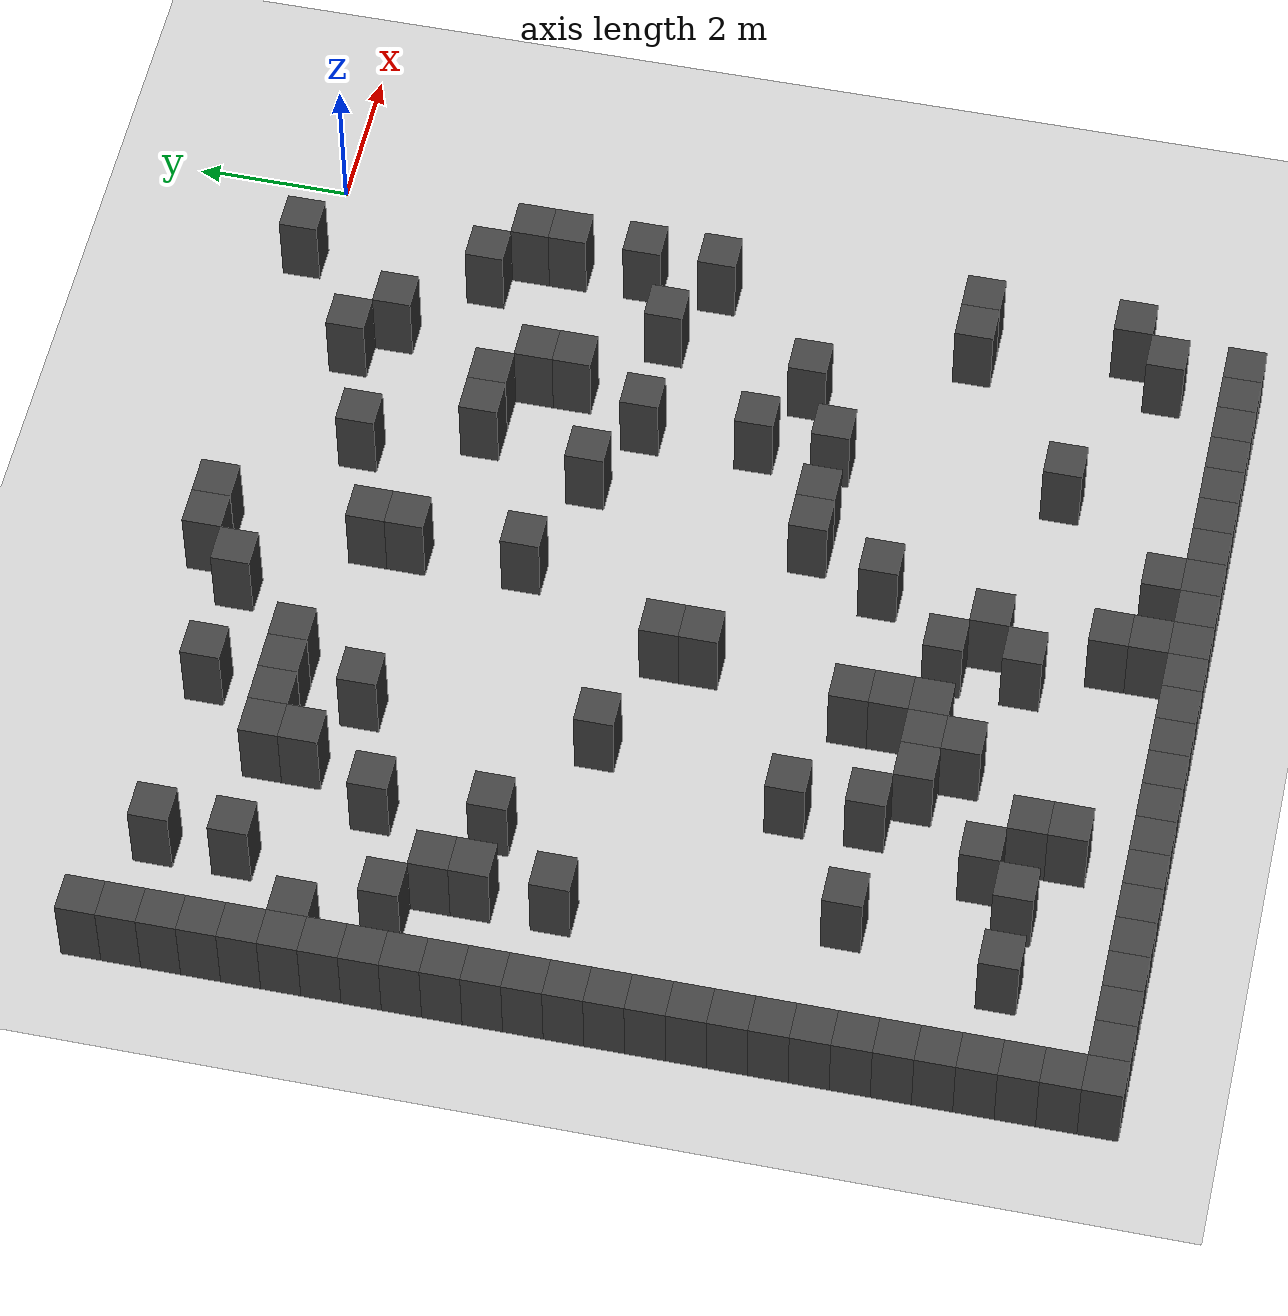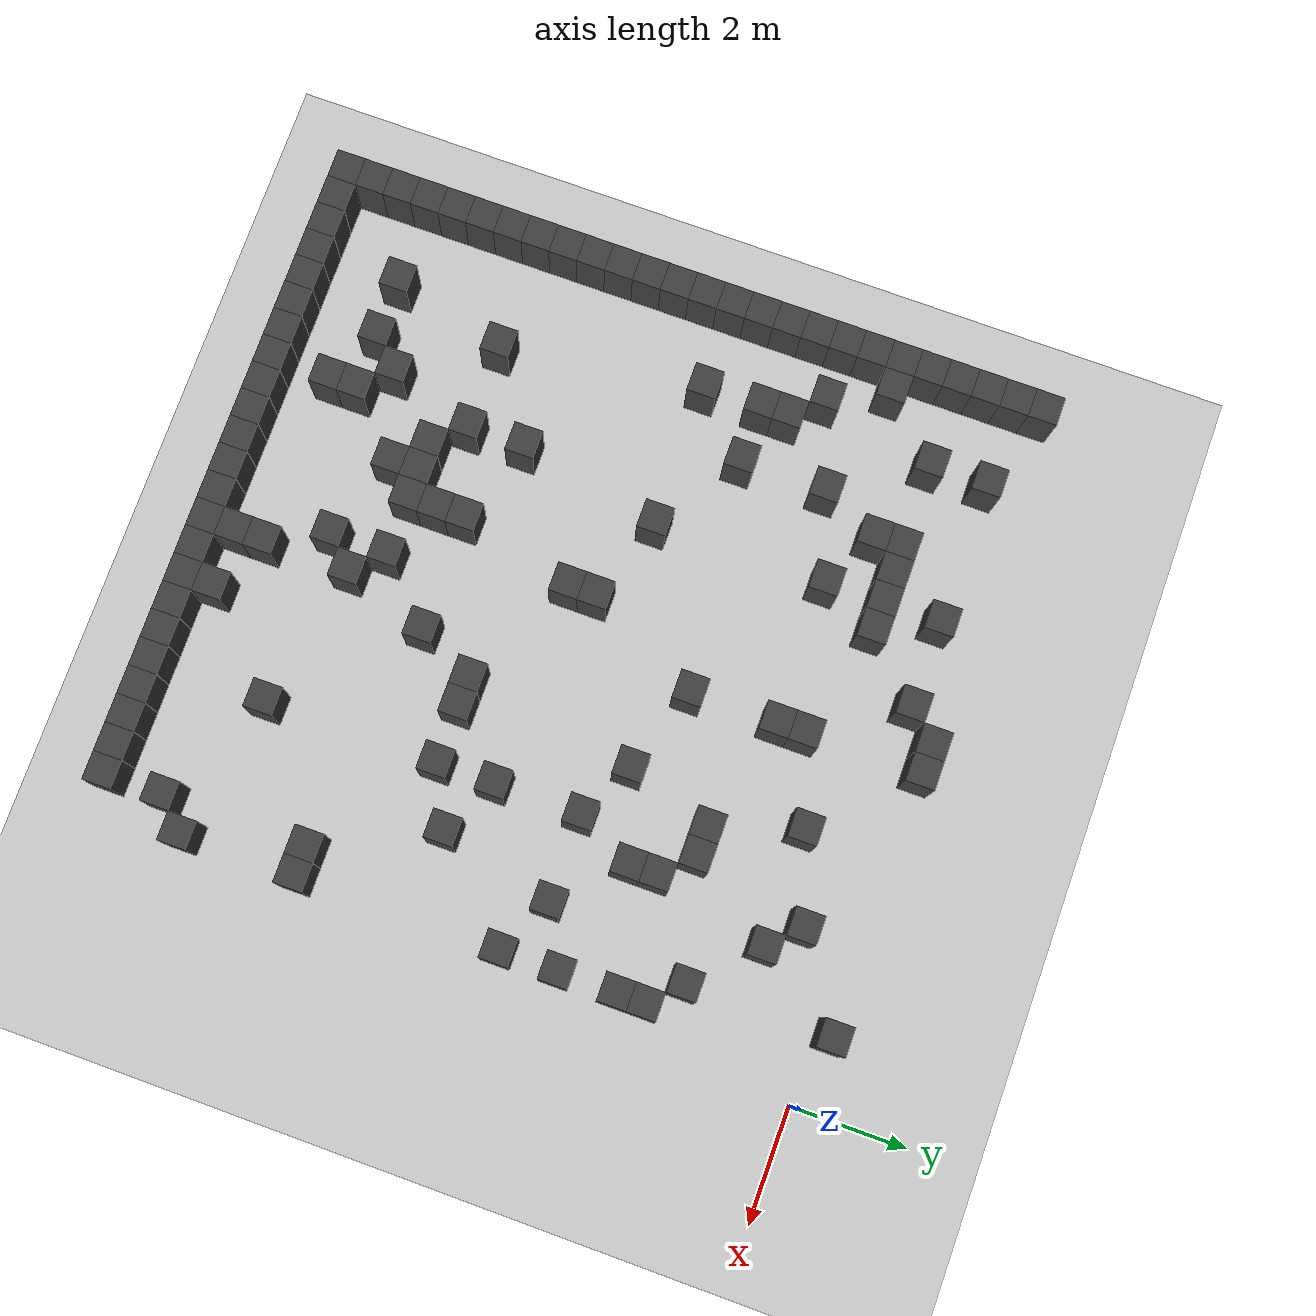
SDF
<sdf version="1.7">
 <world name="map_2375">
  <model name="ground_plane">
   <static>true</static>
   <link name="link">
    <collision name="collision">
     <geometry><plane><normal>0 0 1</normal><size>200 200</size></plane></geometry>
    </collision>
    <visual name="visual">
     <geometry><plane><normal>0 0 1</normal><size>200 200</size></plane></geometry>
     <material><ambient>0.8 0.8 0.8 1</ambient><diffuse>0.8 0.8 0.8 1</diffuse></material>
    </visual>
   </link>
  </model>
  <model name="maze_environment">
   <static>true</static>
   <link name="wall_235">
    <pose>-12.250 0.250 0.500 0 0 0</pose>
    <collision name="col"><geometry><box><size>0.5 0.5 1.0</size></box></geometry></collision>
    <visual name="vis">
     <geometry><box><size>0.5 0.5 1.0</size></box></geometry>
     <material><ambient>0.15 0.15 0.15 1</ambient><diffuse>0.25 0.25 0.25 1</diffuse></material>
    </visual>
   </link>
   <link name="wall_236">
    <pose>-6.250 0.250 0.500 0 0 0</pose>
    <collision name="col"><geometry><box><size>0.5 0.5 1.0</size></box></geometry></collision>
    <visual name="vis">
     <geometry><box><size>0.5 0.5 1.0</size></box></geometry>
     <material><ambient>0.15 0.15 0.15 1</ambient><diffuse>0.25 0.25 0.25 1</diffuse></material>
    </visual>
   </link>
   <link name="wall_237">
    <pose>-5.750 0.250 0.500 0 0 0</pose>
    <collision name="col"><geometry><box><size>0.5 0.5 1.0</size></box></geometry></collision>
    <visual name="vis">
     <geometry><box><size>0.5 0.5 1.0</size></box></geometry>
     <material><ambient>0.15 0.15 0.15 1</ambient><diffuse>0.25 0.25 0.25 1</diffuse></material>
    </visual>
   </link>
   <link name="wall_238">
    <pose>-1.250 0.250 0.500 0 0 0</pose>
    <collision name="col"><geometry><box><size>0.5 0.5 1.0</size></box></geometry></collision>
    <visual name="vis">
     <geometry><box><size>0.5 0.5 1.0</size></box></geometry>
     <material><ambient>0.15 0.15 0.15 1</ambient><diffuse>0.25 0.25 0.25 1</diffuse></material>
    </visual>
   </link>
   <link name="wall_246">
    <pose>-12.250 -0.250 0.500 0 0 0</pose>
    <collision name="col"><geometry><box><size>0.5 0.5 1.0</size></box></geometry></collision>
    <visual name="vis">
     <geometry><box><size>0.5 0.5 1.0</size></box></geometry>
     <material><ambient>0.15 0.15 0.15 1</ambient><diffuse>0.25 0.25 0.25 1</diffuse></material>
    </visual>
   </link>
   <link name="wall_247">
    <pose>-10.750 -0.250 0.500 0 0 0</pose>
    <collision name="col"><geometry><box><size>0.5 0.5 1.0</size></box></geometry></collision>
    <visual name="vis">
     <geometry><box><size>0.5 0.5 1.0</size></box></geometry>
     <material><ambient>0.15 0.15 0.15 1</ambient><diffuse>0.25 0.25 0.25 1</diffuse></material>
    </visual>
   </link>
   <link name="wall_248">
    <pose>-8.250 -0.250 0.500 0 0 0</pose>
    <collision name="col"><geometry><box><size>0.5 0.5 1.0</size></box></geometry></collision>
    <visual name="vis">
     <geometry><box><size>0.5 0.5 1.0</size></box></geometry>
     <material><ambient>0.15 0.15 0.15 1</ambient><diffuse>0.25 0.25 0.25 1</diffuse></material>
    </visual>
   </link>
   <link name="wall_249">
    <pose>-6.750 -0.250 0.500 0 0 0</pose>
    <collision name="col"><geometry><box><size>0.5 0.5 1.0</size></box></geometry></collision>
    <visual name="vis">
     <geometry><box><size>0.5 0.5 1.0</size></box></geometry>
     <material><ambient>0.15 0.15 0.15 1</ambient><diffuse>0.25 0.25 0.25 1</diffuse></material>
    </visual>
   </link>
   <link name="wall_253">
    <pose>-12.250 -0.750 0.500 0 0 0</pose>
    <collision name="col"><geometry><box><size>0.5 0.5 1.0</size></box></geometry></collision>
    <visual name="vis">
     <geometry><box><size>0.5 0.5 1.0</size></box></geometry>
     <material><ambient>0.15 0.15 0.15 1</ambient><diffuse>0.25 0.25 0.25 1</diffuse></material>
    </visual>
   </link>
   <link name="wall_254">
    <pose>-2.750 -0.750 0.500 0 0 0</pose>
    <collision name="col"><geometry><box><size>0.5 0.5 1.0</size></box></geometry></collision>
    <visual name="vis">
     <geometry><box><size>0.5 0.5 1.0</size></box></geometry>
     <material><ambient>0.15 0.15 0.15 1</ambient><diffuse>0.25 0.25 0.25 1</diffuse></material>
    </visual>
   </link>
   <link name="wall_258">
    <pose>-12.250 -1.250 0.500 0 0 0</pose>
    <collision name="col"><geometry><box><size>0.5 0.5 1.0</size></box></geometry></collision>
    <visual name="vis">
     <geometry><box><size>0.5 0.5 1.0</size></box></geometry>
     <material><ambient>0.15 0.15 0.15 1</ambient><diffuse>0.25 0.25 0.25 1</diffuse></material>
    </visual>
   </link>
   <link name="wall_259">
    <pose>-10.750 -1.250 0.500 0 0 0</pose>
    <collision name="col"><geometry><box><size>0.5 0.5 1.0</size></box></geometry></collision>
    <visual name="vis">
     <geometry><box><size>0.5 0.5 1.0</size></box></geometry>
     <material><ambient>0.15 0.15 0.15 1</ambient><diffuse>0.25 0.25 0.25 1</diffuse></material>
    </visual>
   </link>
   <link name="wall_260">
    <pose>-9.250 -1.250 0.500 0 0 0</pose>
    <collision name="col"><geometry><box><size>0.5 0.5 1.0</size></box></geometry></collision>
    <visual name="vis">
     <geometry><box><size>0.5 0.5 1.0</size></box></geometry>
     <material><ambient>0.15 0.15 0.15 1</ambient><diffuse>0.25 0.25 0.25 1</diffuse></material>
    </visual>
   </link>
   <link name="wall_261">
    <pose>-8.750 -1.250 0.500 0 0 0</pose>
    <collision name="col"><geometry><box><size>0.5 0.5 1.0</size></box></geometry></collision>
    <visual name="vis">
     <geometry><box><size>0.5 0.5 1.0</size></box></geometry>
     <material><ambient>0.15 0.15 0.15 1</ambient><diffuse>0.25 0.25 0.25 1</diffuse></material>
    </visual>
   </link>
   <link name="wall_262">
    <pose>-8.250 -1.250 0.500 0 0 0</pose>
    <collision name="col"><geometry><box><size>0.5 0.5 1.0</size></box></geometry></collision>
    <visual name="vis">
     <geometry><box><size>0.5 0.5 1.0</size></box></geometry>
     <material><ambient>0.15 0.15 0.15 1</ambient><diffuse>0.25 0.25 0.25 1</diffuse></material>
    </visual>
   </link>
   <link name="wall_263">
    <pose>-7.750 -1.250 0.500 0 0 0</pose>
    <collision name="col"><geometry><box><size>0.5 0.5 1.0</size></box></geometry></collision>
    <visual name="vis">
     <geometry><box><size>0.5 0.5 1.0</size></box></geometry>
     <material><ambient>0.15 0.15 0.15 1</ambient><diffuse>0.25 0.25 0.25 1</diffuse></material>
    </visual>
   </link>
   <link name="wall_264">
    <pose>-4.250 -1.250 0.500 0 0 0</pose>
    <collision name="col"><geometry><box><size>0.5 0.5 1.0</size></box></geometry></collision>
    <visual name="vis">
     <geometry><box><size>0.5 0.5 1.0</size></box></geometry>
     <material><ambient>0.15 0.15 0.15 1</ambient><diffuse>0.25 0.25 0.25 1</diffuse></material>
    </visual>
   </link>
   <link name="wall_265">
    <pose>-2.250 -1.250 0.500 0 0 0</pose>
    <collision name="col"><geometry><box><size>0.5 0.5 1.0</size></box></geometry></collision>
    <visual name="vis">
     <geometry><box><size>0.5 0.5 1.0</size></box></geometry>
     <material><ambient>0.15 0.15 0.15 1</ambient><diffuse>0.25 0.25 0.25 1</diffuse></material>
    </visual>
   </link>
   <link name="wall_270">
    <pose>-12.250 -1.750 0.500 0 0 0</pose>
    <collision name="col"><geometry><box><size>0.5 0.5 1.0</size></box></geometry></collision>
    <visual name="vis">
     <geometry><box><size>0.5 0.5 1.0</size></box></geometry>
     <material><ambient>0.15 0.15 0.15 1</ambient><diffuse>0.25 0.25 0.25 1</diffuse></material>
    </visual>
   </link>
   <link name="wall_271">
    <pose>-9.250 -1.750 0.500 0 0 0</pose>
    <collision name="col"><geometry><box><size>0.5 0.5 1.0</size></box></geometry></collision>
    <visual name="vis">
     <geometry><box><size>0.5 0.5 1.0</size></box></geometry>
     <material><ambient>0.15 0.15 0.15 1</ambient><diffuse>0.25 0.25 0.25 1</diffuse></material>
    </visual>
   </link>
   <link name="wall_272">
    <pose>-5.750 -1.750 0.500 0 0 0</pose>
    <collision name="col"><geometry><box><size>0.5 0.5 1.0</size></box></geometry></collision>
    <visual name="vis">
     <geometry><box><size>0.5 0.5 1.0</size></box></geometry>
     <material><ambient>0.15 0.15 0.15 1</ambient><diffuse>0.25 0.25 0.25 1</diffuse></material>
    </visual>
   </link>
   <link name="wall_279">
    <pose>-12.250 -2.250 0.500 0 0 0</pose>
    <collision name="col"><geometry><box><size>0.5 0.5 1.0</size></box></geometry></collision>
    <visual name="vis">
     <geometry><box><size>0.5 0.5 1.0</size></box></geometry>
     <material><ambient>0.15 0.15 0.15 1</ambient><diffuse>0.25 0.25 0.25 1</diffuse></material>
    </visual>
   </link>
   <link name="wall_280">
    <pose>-11.750 -2.250 0.500 0 0 0</pose>
    <collision name="col"><geometry><box><size>0.5 0.5 1.0</size></box></geometry></collision>
    <visual name="vis">
     <geometry><box><size>0.5 0.5 1.0</size></box></geometry>
     <material><ambient>0.15 0.15 0.15 1</ambient><diffuse>0.25 0.25 0.25 1</diffuse></material>
    </visual>
   </link>
   <link name="wall_281">
    <pose>-8.250 -2.250 0.500 0 0 0</pose>
    <collision name="col"><geometry><box><size>0.5 0.5 1.0</size></box></geometry></collision>
    <visual name="vis">
     <geometry><box><size>0.5 0.5 1.0</size></box></geometry>
     <material><ambient>0.15 0.15 0.15 1</ambient><diffuse>0.25 0.25 0.25 1</diffuse></material>
    </visual>
   </link>
   <link name="wall_282">
    <pose>-5.750 -2.250 0.500 0 0 0</pose>
    <collision name="col"><geometry><box><size>0.5 0.5 1.0</size></box></geometry></collision>
    <visual name="vis">
     <geometry><box><size>0.5 0.5 1.0</size></box></geometry>
     <material><ambient>0.15 0.15 0.15 1</ambient><diffuse>0.25 0.25 0.25 1</diffuse></material>
    </visual>
   </link>
   <link name="wall_283">
    <pose>-1.250 -2.250 0.500 0 0 0</pose>
    <collision name="col"><geometry><box><size>0.5 0.5 1.0</size></box></geometry></collision>
    <visual name="vis">
     <geometry><box><size>0.5 0.5 1.0</size></box></geometry>
     <material><ambient>0.15 0.15 0.15 1</ambient><diffuse>0.25 0.25 0.25 1</diffuse></material>
    </visual>
   </link>
   <link name="wall_287">
    <pose>-12.250 -2.750 0.500 0 0 0</pose>
    <collision name="col"><geometry><box><size>0.5 0.5 1.0</size></box></geometry></collision>
    <visual name="vis">
     <geometry><box><size>0.5 0.5 1.0</size></box></geometry>
     <material><ambient>0.15 0.15 0.15 1</ambient><diffuse>0.25 0.25 0.25 1</diffuse></material>
    </visual>
   </link>
   <link name="wall_288">
    <pose>-9.750 -2.750 0.500 0 0 0</pose>
    <collision name="col"><geometry><box><size>0.5 0.5 1.0</size></box></geometry></collision>
    <visual name="vis">
     <geometry><box><size>0.5 0.5 1.0</size></box></geometry>
     <material><ambient>0.15 0.15 0.15 1</ambient><diffuse>0.25 0.25 0.25 1</diffuse></material>
    </visual>
   </link>
   <link name="wall_289">
    <pose>-3.750 -2.750 0.500 0 0 0</pose>
    <collision name="col"><geometry><box><size>0.5 0.5 1.0</size></box></geometry></collision>
    <visual name="vis">
     <geometry><box><size>0.5 0.5 1.0</size></box></geometry>
     <material><ambient>0.15 0.15 0.15 1</ambient><diffuse>0.25 0.25 0.25 1</diffuse></material>
    </visual>
   </link>
   <link name="wall_290">
    <pose>-3.250 -2.750 0.500 0 0 0</pose>
    <collision name="col"><geometry><box><size>0.5 0.5 1.0</size></box></geometry></collision>
    <visual name="vis">
     <geometry><box><size>0.5 0.5 1.0</size></box></geometry>
     <material><ambient>0.15 0.15 0.15 1</ambient><diffuse>0.25 0.25 0.25 1</diffuse></material>
    </visual>
   </link>
   <link name="wall_291">
    <pose>-0.750 -2.750 0.500 0 0 0</pose>
    <collision name="col"><geometry><box><size>0.5 0.5 1.0</size></box></geometry></collision>
    <visual name="vis">
     <geometry><box><size>0.5 0.5 1.0</size></box></geometry>
     <material><ambient>0.15 0.15 0.15 1</ambient><diffuse>0.25 0.25 0.25 1</diffuse></material>
    </visual>
   </link>
   <link name="wall_294">
    <pose>-12.250 -3.250 0.500 0 0 0</pose>
    <collision name="col"><geometry><box><size>0.5 0.5 1.0</size></box></geometry></collision>
    <visual name="vis">
     <geometry><box><size>0.5 0.5 1.0</size></box></geometry>
     <material><ambient>0.15 0.15 0.15 1</ambient><diffuse>0.25 0.25 0.25 1</diffuse></material>
    </visual>
   </link>
   <link name="wall_295">
    <pose>-11.250 -3.250 0.500 0 0 0</pose>
    <collision name="col"><geometry><box><size>0.5 0.5 1.0</size></box></geometry></collision>
    <visual name="vis">
     <geometry><box><size>0.5 0.5 1.0</size></box></geometry>
     <material><ambient>0.15 0.15 0.15 1</ambient><diffuse>0.25 0.25 0.25 1</diffuse></material>
    </visual>
   </link>
   <link name="wall_296">
    <pose>-2.750 -3.250 0.500 0 0 0</pose>
    <collision name="col"><geometry><box><size>0.5 0.5 1.0</size></box></geometry></collision>
    <visual name="vis">
     <geometry><box><size>0.5 0.5 1.0</size></box></geometry>
     <material><ambient>0.15 0.15 0.15 1</ambient><diffuse>0.25 0.25 0.25 1</diffuse></material>
    </visual>
   </link>
   <link name="wall_297">
    <pose>-0.750 -3.250 0.500 0 0 0</pose>
    <collision name="col"><geometry><box><size>0.5 0.5 1.0</size></box></geometry></collision>
    <visual name="vis">
     <geometry><box><size>0.5 0.5 1.0</size></box></geometry>
     <material><ambient>0.15 0.15 0.15 1</ambient><diffuse>0.25 0.25 0.25 1</diffuse></material>
    </visual>
   </link>
   <link name="wall_299">
    <pose>-12.250 -3.750 0.500 0 0 0</pose>
    <collision name="col"><geometry><box><size>0.5 0.5 1.0</size></box></geometry></collision>
    <visual name="vis">
     <geometry><box><size>0.5 0.5 1.0</size></box></geometry>
     <material><ambient>0.15 0.15 0.15 1</ambient><diffuse>0.25 0.25 0.25 1</diffuse></material>
    </visual>
   </link>
   <link name="wall_300">
    <pose>-10.750 -3.750 0.500 0 0 0</pose>
    <collision name="col"><geometry><box><size>0.5 0.5 1.0</size></box></geometry></collision>
    <visual name="vis">
     <geometry><box><size>0.5 0.5 1.0</size></box></geometry>
     <material><ambient>0.15 0.15 0.15 1</ambient><diffuse>0.25 0.25 0.25 1</diffuse></material>
    </visual>
   </link>
   <link name="wall_301">
    <pose>-5.750 -3.750 0.500 0 0 0</pose>
    <collision name="col"><geometry><box><size>0.5 0.5 1.0</size></box></geometry></collision>
    <visual name="vis">
     <geometry><box><size>0.5 0.5 1.0</size></box></geometry>
     <material><ambient>0.15 0.15 0.15 1</ambient><diffuse>0.25 0.25 0.25 1</diffuse></material>
    </visual>
   </link>
   <link name="wall_302">
    <pose>-2.750 -3.750 0.500 0 0 0</pose>
    <collision name="col"><geometry><box><size>0.5 0.5 1.0</size></box></geometry></collision>
    <visual name="vis">
     <geometry><box><size>0.5 0.5 1.0</size></box></geometry>
     <material><ambient>0.15 0.15 0.15 1</ambient><diffuse>0.25 0.25 0.25 1</diffuse></material>
    </visual>
   </link>
   <link name="wall_307">
    <pose>-12.250 -4.250 0.500 0 0 0</pose>
    <collision name="col"><geometry><box><size>0.5 0.5 1.0</size></box></geometry></collision>
    <visual name="vis">
     <geometry><box><size>0.5 0.5 1.0</size></box></geometry>
     <material><ambient>0.15 0.15 0.15 1</ambient><diffuse>0.25 0.25 0.25 1</diffuse></material>
    </visual>
   </link>
   <link name="wall_308">
    <pose>-10.750 -4.250 0.500 0 0 0</pose>
    <collision name="col"><geometry><box><size>0.5 0.5 1.0</size></box></geometry></collision>
    <visual name="vis">
     <geometry><box><size>0.5 0.5 1.0</size></box></geometry>
     <material><ambient>0.15 0.15 0.15 1</ambient><diffuse>0.25 0.25 0.25 1</diffuse></material>
    </visual>
   </link>
   <link name="wall_309">
    <pose>-9.750 -4.250 0.500 0 0 0</pose>
    <collision name="col"><geometry><box><size>0.5 0.5 1.0</size></box></geometry></collision>
    <visual name="vis">
     <geometry><box><size>0.5 0.5 1.0</size></box></geometry>
     <material><ambient>0.15 0.15 0.15 1</ambient><diffuse>0.25 0.25 0.25 1</diffuse></material>
    </visual>
   </link>
   <link name="wall_310">
    <pose>-4.250 -4.250 0.500 0 0 0</pose>
    <collision name="col"><geometry><box><size>0.5 0.5 1.0</size></box></geometry></collision>
    <visual name="vis">
     <geometry><box><size>0.5 0.5 1.0</size></box></geometry>
     <material><ambient>0.15 0.15 0.15 1</ambient><diffuse>0.25 0.25 0.25 1</diffuse></material>
    </visual>
   </link>
   <link name="wall_311">
    <pose>-0.750 -4.250 0.500 0 0 0</pose>
    <collision name="col"><geometry><box><size>0.5 0.5 1.0</size></box></geometry></collision>
    <visual name="vis">
     <geometry><box><size>0.5 0.5 1.0</size></box></geometry>
     <material><ambient>0.15 0.15 0.15 1</ambient><diffuse>0.25 0.25 0.25 1</diffuse></material>
    </visual>
   </link>
   <link name="wall_316">
    <pose>-12.250 -4.750 0.500 0 0 0</pose>
    <collision name="col"><geometry><box><size>0.5 0.5 1.0</size></box></geometry></collision>
    <visual name="vis">
     <geometry><box><size>0.5 0.5 1.0</size></box></geometry>
     <material><ambient>0.15 0.15 0.15 1</ambient><diffuse>0.25 0.25 0.25 1</diffuse></material>
    </visual>
   </link>
   <link name="wall_317">
    <pose>-3.250 -4.750 0.500 0 0 0</pose>
    <collision name="col"><geometry><box><size>0.5 0.5 1.0</size></box></geometry></collision>
    <visual name="vis">
     <geometry><box><size>0.5 0.5 1.0</size></box></geometry>
     <material><ambient>0.15 0.15 0.15 1</ambient><diffuse>0.25 0.25 0.25 1</diffuse></material>
    </visual>
   </link>
   <link name="wall_318">
    <pose>-1.750 -4.750 0.500 0 0 0</pose>
    <collision name="col"><geometry><box><size>0.5 0.5 1.0</size></box></geometry></collision>
    <visual name="vis">
     <geometry><box><size>0.5 0.5 1.0</size></box></geometry>
     <material><ambient>0.15 0.15 0.15 1</ambient><diffuse>0.25 0.25 0.25 1</diffuse></material>
    </visual>
   </link>
   <link name="wall_321">
    <pose>-12.250 -5.250 0.500 0 0 0</pose>
    <collision name="col"><geometry><box><size>0.5 0.5 1.0</size></box></geometry></collision>
    <visual name="vis">
     <geometry><box><size>0.5 0.5 1.0</size></box></geometry>
     <material><ambient>0.15 0.15 0.15 1</ambient><diffuse>0.25 0.25 0.25 1</diffuse></material>
    </visual>
   </link>
   <link name="wall_322">
    <pose>-10.750 -5.250 0.500 0 0 0</pose>
    <collision name="col"><geometry><box><size>0.5 0.5 1.0</size></box></geometry></collision>
    <visual name="vis">
     <geometry><box><size>0.5 0.5 1.0</size></box></geometry>
     <material><ambient>0.15 0.15 0.15 1</ambient><diffuse>0.25 0.25 0.25 1</diffuse></material>
    </visual>
   </link>
   <link name="wall_323">
    <pose>-8.250 -5.250 0.500 0 0 0</pose>
    <collision name="col"><geometry><box><size>0.5 0.5 1.0</size></box></geometry></collision>
    <visual name="vis">
     <geometry><box><size>0.5 0.5 1.0</size></box></geometry>
     <material><ambient>0.15 0.15 0.15 1</ambient><diffuse>0.25 0.25 0.25 1</diffuse></material>
    </visual>
   </link>
   <link name="wall_324">
    <pose>-0.750 -5.250 0.500 0 0 0</pose>
    <collision name="col"><geometry><box><size>0.5 0.5 1.0</size></box></geometry></collision>
    <visual name="vis">
     <geometry><box><size>0.5 0.5 1.0</size></box></geometry>
     <material><ambient>0.15 0.15 0.15 1</ambient><diffuse>0.25 0.25 0.25 1</diffuse></material>
    </visual>
   </link>
   <link name="wall_330">
    <pose>-12.250 -5.750 0.500 0 0 0</pose>
    <collision name="col"><geometry><box><size>0.5 0.5 1.0</size></box></geometry></collision>
    <visual name="vis">
     <geometry><box><size>0.5 0.5 1.0</size></box></geometry>
     <material><ambient>0.15 0.15 0.15 1</ambient><diffuse>0.25 0.25 0.25 1</diffuse></material>
    </visual>
   </link>
   <link name="wall_331">
    <pose>-6.750 -5.750 0.500 0 0 0</pose>
    <collision name="col"><geometry><box><size>0.5 0.5 1.0</size></box></geometry></collision>
    <visual name="vis">
     <geometry><box><size>0.5 0.5 1.0</size></box></geometry>
     <material><ambient>0.15 0.15 0.15 1</ambient><diffuse>0.25 0.25 0.25 1</diffuse></material>
    </visual>
   </link>
   <link name="wall_338">
    <pose>-12.250 -6.250 0.500 0 0 0</pose>
    <collision name="col"><geometry><box><size>0.5 0.5 1.0</size></box></geometry></collision>
    <visual name="vis">
     <geometry><box><size>0.5 0.5 1.0</size></box></geometry>
     <material><ambient>0.15 0.15 0.15 1</ambient><diffuse>0.25 0.25 0.25 1</diffuse></material>
    </visual>
   </link>
   <link name="wall_339">
    <pose>-6.750 -6.250 0.500 0 0 0</pose>
    <collision name="col"><geometry><box><size>0.5 0.5 1.0</size></box></geometry></collision>
    <visual name="vis">
     <geometry><box><size>0.5 0.5 1.0</size></box></geometry>
     <material><ambient>0.15 0.15 0.15 1</ambient><diffuse>0.25 0.25 0.25 1</diffuse></material>
    </visual>
   </link>
   <link name="wall_340">
    <pose>-3.250 -6.250 0.500 0 0 0</pose>
    <collision name="col"><geometry><box><size>0.5 0.5 1.0</size></box></geometry></collision>
    <visual name="vis">
     <geometry><box><size>0.5 0.5 1.0</size></box></geometry>
     <material><ambient>0.15 0.15 0.15 1</ambient><diffuse>0.25 0.25 0.25 1</diffuse></material>
    </visual>
   </link>
   <link name="wall_343">
    <pose>-12.250 -6.750 0.500 0 0 0</pose>
    <collision name="col"><geometry><box><size>0.5 0.5 1.0</size></box></geometry></collision>
    <visual name="vis">
     <geometry><box><size>0.5 0.5 1.0</size></box></geometry>
     <material><ambient>0.15 0.15 0.15 1</ambient><diffuse>0.25 0.25 0.25 1</diffuse></material>
    </visual>
   </link>
   <link name="wall_344">
    <pose>-2.250 -6.750 0.500 0 0 0</pose>
    <collision name="col"><geometry><box><size>0.5 0.5 1.0</size></box></geometry></collision>
    <visual name="vis">
     <geometry><box><size>0.5 0.5 1.0</size></box></geometry>
     <material><ambient>0.15 0.15 0.15 1</ambient><diffuse>0.25 0.25 0.25 1</diffuse></material>
    </visual>
   </link>
   <link name="wall_352">
    <pose>-12.250 -7.250 0.500 0 0 0</pose>
    <collision name="col"><geometry><box><size>0.5 0.5 1.0</size></box></geometry></collision>
    <visual name="vis">
     <geometry><box><size>0.5 0.5 1.0</size></box></geometry>
     <material><ambient>0.15 0.15 0.15 1</ambient><diffuse>0.25 0.25 0.25 1</diffuse></material>
    </visual>
   </link>
   <link name="wall_353">
    <pose>-4.750 -7.250 0.500 0 0 0</pose>
    <collision name="col"><geometry><box><size>0.5 0.5 1.0</size></box></geometry></collision>
    <visual name="vis">
     <geometry><box><size>0.5 0.5 1.0</size></box></geometry>
     <material><ambient>0.15 0.15 0.15 1</ambient><diffuse>0.25 0.25 0.25 1</diffuse></material>
    </visual>
   </link>
   <link name="wall_354">
    <pose>-4.250 -7.250 0.500 0 0 0</pose>
    <collision name="col"><geometry><box><size>0.5 0.5 1.0</size></box></geometry></collision>
    <visual name="vis">
     <geometry><box><size>0.5 0.5 1.0</size></box></geometry>
     <material><ambient>0.15 0.15 0.15 1</ambient><diffuse>0.25 0.25 0.25 1</diffuse></material>
    </visual>
   </link>
   <link name="wall_355">
    <pose>-3.250 -7.250 0.500 0 0 0</pose>
    <collision name="col"><geometry><box><size>0.5 0.5 1.0</size></box></geometry></collision>
    <visual name="vis">
     <geometry><box><size>0.5 0.5 1.0</size></box></geometry>
     <material><ambient>0.15 0.15 0.15 1</ambient><diffuse>0.25 0.25 0.25 1</diffuse></material>
    </visual>
   </link>
   <link name="wall_358">
    <pose>-12.250 -7.750 0.500 0 0 0</pose>
    <collision name="col"><geometry><box><size>0.5 0.5 1.0</size></box></geometry></collision>
    <visual name="vis">
     <geometry><box><size>0.5 0.5 1.0</size></box></geometry>
     <material><ambient>0.15 0.15 0.15 1</ambient><diffuse>0.25 0.25 0.25 1</diffuse></material>
    </visual>
   </link>
   <link name="wall_359">
    <pose>-8.750 -7.750 0.500 0 0 0</pose>
    <collision name="col"><geometry><box><size>0.5 0.5 1.0</size></box></geometry></collision>
    <visual name="vis">
     <geometry><box><size>0.5 0.5 1.0</size></box></geometry>
     <material><ambient>0.15 0.15 0.15 1</ambient><diffuse>0.25 0.25 0.25 1</diffuse></material>
    </visual>
   </link>
   <link name="wall_365">
    <pose>-12.250 -8.250 0.500 0 0 0</pose>
    <collision name="col"><geometry><box><size>0.5 0.5 1.0</size></box></geometry></collision>
    <visual name="vis">
     <geometry><box><size>0.5 0.5 1.0</size></box></geometry>
     <material><ambient>0.15 0.15 0.15 1</ambient><diffuse>0.25 0.25 0.25 1</diffuse></material>
    </visual>
   </link>
   <link name="wall_366">
    <pose>-7.250 -8.250 0.500 0 0 0</pose>
    <collision name="col"><geometry><box><size>0.5 0.5 1.0</size></box></geometry></collision>
    <visual name="vis">
     <geometry><box><size>0.5 0.5 1.0</size></box></geometry>
     <material><ambient>0.15 0.15 0.15 1</ambient><diffuse>0.25 0.25 0.25 1</diffuse></material>
    </visual>
   </link>
   <link name="wall_367">
    <pose>-5.250 -8.250 0.500 0 0 0</pose>
    <collision name="col"><geometry><box><size>0.5 0.5 1.0</size></box></geometry></collision>
    <visual name="vis">
     <geometry><box><size>0.5 0.5 1.0</size></box></geometry>
     <material><ambient>0.15 0.15 0.15 1</ambient><diffuse>0.25 0.25 0.25 1</diffuse></material>
    </visual>
   </link>
   <link name="wall_375">
    <pose>-12.250 -8.750 0.500 0 0 0</pose>
    <collision name="col"><geometry><box><size>0.5 0.5 1.0</size></box></geometry></collision>
    <visual name="vis">
     <geometry><box><size>0.5 0.5 1.0</size></box></geometry>
     <material><ambient>0.15 0.15 0.15 1</ambient><diffuse>0.25 0.25 0.25 1</diffuse></material>
    </visual>
   </link>
   <link name="wall_376">
    <pose>-10.250 -8.750 0.500 0 0 0</pose>
    <collision name="col"><geometry><box><size>0.5 0.5 1.0</size></box></geometry></collision>
    <visual name="vis">
     <geometry><box><size>0.5 0.5 1.0</size></box></geometry>
     <material><ambient>0.15 0.15 0.15 1</ambient><diffuse>0.25 0.25 0.25 1</diffuse></material>
    </visual>
   </link>
   <link name="wall_377">
    <pose>-8.750 -8.750 0.500 0 0 0</pose>
    <collision name="col"><geometry><box><size>0.5 0.5 1.0</size></box></geometry></collision>
    <visual name="vis">
     <geometry><box><size>0.5 0.5 1.0</size></box></geometry>
     <material><ambient>0.15 0.15 0.15 1</ambient><diffuse>0.25 0.25 0.25 1</diffuse></material>
    </visual>
   </link>
   <link name="wall_378">
    <pose>-7.250 -8.750 0.500 0 0 0</pose>
    <collision name="col"><geometry><box><size>0.5 0.5 1.0</size></box></geometry></collision>
    <visual name="vis">
     <geometry><box><size>0.5 0.5 1.0</size></box></geometry>
     <material><ambient>0.15 0.15 0.15 1</ambient><diffuse>0.25 0.25 0.25 1</diffuse></material>
    </visual>
   </link>
   <link name="wall_379">
    <pose>-1.250 -8.750 0.500 0 0 0</pose>
    <collision name="col"><geometry><box><size>0.5 0.5 1.0</size></box></geometry></collision>
    <visual name="vis">
     <geometry><box><size>0.5 0.5 1.0</size></box></geometry>
     <material><ambient>0.15 0.15 0.15 1</ambient><diffuse>0.25 0.25 0.25 1</diffuse></material>
    </visual>
   </link>
   <link name="wall_380">
    <pose>-0.750 -8.750 0.500 0 0 0</pose>
    <collision name="col"><geometry><box><size>0.5 0.5 1.0</size></box></geometry></collision>
    <visual name="vis">
     <geometry><box><size>0.5 0.5 1.0</size></box></geometry>
     <material><ambient>0.15 0.15 0.15 1</ambient><diffuse>0.25 0.25 0.25 1</diffuse></material>
    </visual>
   </link>
   <link name="wall_383">
    <pose>-12.250 -9.250 0.500 0 0 0</pose>
    <collision name="col"><geometry><box><size>0.5 0.5 1.0</size></box></geometry></collision>
    <visual name="vis">
     <geometry><box><size>0.5 0.5 1.0</size></box></geometry>
     <material><ambient>0.15 0.15 0.15 1</ambient><diffuse>0.25 0.25 0.25 1</diffuse></material>
    </visual>
   </link>
   <link name="wall_384">
    <pose>-8.250 -9.250 0.500 0 0 0</pose>
    <collision name="col"><geometry><box><size>0.5 0.5 1.0</size></box></geometry></collision>
    <visual name="vis">
     <geometry><box><size>0.5 0.5 1.0</size></box></geometry>
     <material><ambient>0.15 0.15 0.15 1</ambient><diffuse>0.25 0.25 0.25 1</diffuse></material>
    </visual>
   </link>
   <link name="wall_385">
    <pose>-7.750 -9.250 0.500 0 0 0</pose>
    <collision name="col"><geometry><box><size>0.5 0.5 1.0</size></box></geometry></collision>
    <visual name="vis">
     <geometry><box><size>0.5 0.5 1.0</size></box></geometry>
     <material><ambient>0.15 0.15 0.15 1</ambient><diffuse>0.25 0.25 0.25 1</diffuse></material>
    </visual>
   </link>
   <link name="wall_386">
    <pose>-7.250 -9.250 0.500 0 0 0</pose>
    <collision name="col"><geometry><box><size>0.5 0.5 1.0</size></box></geometry></collision>
    <visual name="vis">
     <geometry><box><size>0.5 0.5 1.0</size></box></geometry>
     <material><ambient>0.15 0.15 0.15 1</ambient><diffuse>0.25 0.25 0.25 1</diffuse></material>
    </visual>
   </link>
   <link name="wall_387">
    <pose>-6.250 -9.250 0.500 0 0 0</pose>
    <collision name="col"><geometry><box><size>0.5 0.5 1.0</size></box></geometry></collision>
    <visual name="vis">
     <geometry><box><size>0.5 0.5 1.0</size></box></geometry>
     <material><ambient>0.15 0.15 0.15 1</ambient><diffuse>0.25 0.25 0.25 1</diffuse></material>
    </visual>
   </link>
   <link name="wall_391">
    <pose>-12.250 -9.750 0.500 0 0 0</pose>
    <collision name="col"><geometry><box><size>0.5 0.5 1.0</size></box></geometry></collision>
    <visual name="vis">
     <geometry><box><size>0.5 0.5 1.0</size></box></geometry>
     <material><ambient>0.15 0.15 0.15 1</ambient><diffuse>0.25 0.25 0.25 1</diffuse></material>
    </visual>
   </link>
   <link name="wall_392">
    <pose>-7.750 -9.750 0.500 0 0 0</pose>
    <collision name="col"><geometry><box><size>0.5 0.5 1.0</size></box></geometry></collision>
    <visual name="vis">
     <geometry><box><size>0.5 0.5 1.0</size></box></geometry>
     <material><ambient>0.15 0.15 0.15 1</ambient><diffuse>0.25 0.25 0.25 1</diffuse></material>
    </visual>
   </link>
   <link name="wall_393">
    <pose>-5.750 -9.750 0.500 0 0 0</pose>
    <collision name="col"><geometry><box><size>0.5 0.5 1.0</size></box></geometry></collision>
    <visual name="vis">
     <geometry><box><size>0.5 0.5 1.0</size></box></geometry>
     <material><ambient>0.15 0.15 0.15 1</ambient><diffuse>0.25 0.25 0.25 1</diffuse></material>
    </visual>
   </link>
   <link name="wall_397">
    <pose>-12.250 -10.250 0.500 0 0 0</pose>
    <collision name="col"><geometry><box><size>0.5 0.5 1.0</size></box></geometry></collision>
    <visual name="vis">
     <geometry><box><size>0.5 0.5 1.0</size></box></geometry>
     <material><ambient>0.15 0.15 0.15 1</ambient><diffuse>0.25 0.25 0.25 1</diffuse></material>
    </visual>
   </link>
   <link name="wall_398">
    <pose>-9.250 -10.250 0.500 0 0 0</pose>
    <collision name="col"><geometry><box><size>0.5 0.5 1.0</size></box></geometry></collision>
    <visual name="vis">
     <geometry><box><size>0.5 0.5 1.0</size></box></geometry>
     <material><ambient>0.15 0.15 0.15 1</ambient><diffuse>0.25 0.25 0.25 1</diffuse></material>
    </visual>
   </link>
   <link name="wall_399">
    <pose>-6.250 -10.250 0.500 0 0 0</pose>
    <collision name="col"><geometry><box><size>0.5 0.5 1.0</size></box></geometry></collision>
    <visual name="vis">
     <geometry><box><size>0.5 0.5 1.0</size></box></geometry>
     <material><ambient>0.15 0.15 0.15 1</ambient><diffuse>0.25 0.25 0.25 1</diffuse></material>
    </visual>
   </link>
   <link name="wall_400">
    <pose>-3.250 -10.250 0.500 0 0 0</pose>
    <collision name="col"><geometry><box><size>0.5 0.5 1.0</size></box></geometry></collision>
    <visual name="vis">
     <geometry><box><size>0.5 0.5 1.0</size></box></geometry>
     <material><ambient>0.15 0.15 0.15 1</ambient><diffuse>0.25 0.25 0.25 1</diffuse></material>
    </visual>
   </link>
   <link name="wall_405">
    <pose>-12.250 -10.750 0.500 0 0 0</pose>
    <collision name="col"><geometry><box><size>0.5 0.5 1.0</size></box></geometry></collision>
    <visual name="vis">
     <geometry><box><size>0.5 0.5 1.0</size></box></geometry>
     <material><ambient>0.15 0.15 0.15 1</ambient><diffuse>0.25 0.25 0.25 1</diffuse></material>
    </visual>
   </link>
   <link name="wall_406">
    <pose>-10.750 -10.750 0.500 0 0 0</pose>
    <collision name="col"><geometry><box><size>0.5 0.5 1.0</size></box></geometry></collision>
    <visual name="vis">
     <geometry><box><size>0.5 0.5 1.0</size></box></geometry>
     <material><ambient>0.15 0.15 0.15 1</ambient><diffuse>0.25 0.25 0.25 1</diffuse></material>
    </visual>
   </link>
   <link name="wall_407">
    <pose>-9.750 -10.750 0.500 0 0 0</pose>
    <collision name="col"><geometry><box><size>0.5 0.5 1.0</size></box></geometry></collision>
    <visual name="vis">
     <geometry><box><size>0.5 0.5 1.0</size></box></geometry>
     <material><ambient>0.15 0.15 0.15 1</ambient><diffuse>0.25 0.25 0.25 1</diffuse></material>
    </visual>
   </link>
   <link name="wall_408">
    <pose>-8.750 -10.750 0.500 0 0 0</pose>
    <collision name="col"><geometry><box><size>0.5 0.5 1.0</size></box></geometry></collision>
    <visual name="vis">
     <geometry><box><size>0.5 0.5 1.0</size></box></geometry>
     <material><ambient>0.15 0.15 0.15 1</ambient><diffuse>0.25 0.25 0.25 1</diffuse></material>
    </visual>
   </link>
   <link name="wall_409">
    <pose>-0.750 -10.750 0.500 0 0 0</pose>
    <collision name="col"><geometry><box><size>0.5 0.5 1.0</size></box></geometry></collision>
    <visual name="vis">
     <geometry><box><size>0.5 0.5 1.0</size></box></geometry>
     <material><ambient>0.15 0.15 0.15 1</ambient><diffuse>0.25 0.25 0.25 1</diffuse></material>
    </visual>
   </link>
   <link name="wall_413">
    <pose>-12.250 -11.250 0.500 0 0 0</pose>
    <collision name="col"><geometry><box><size>0.5 0.5 1.0</size></box></geometry></collision>
    <visual name="vis">
     <geometry><box><size>0.5 0.5 1.0</size></box></geometry>
     <material><ambient>0.15 0.15 0.15 1</ambient><diffuse>0.25 0.25 0.25 1</diffuse></material>
    </visual>
   </link>
   <link name="wall_414">
    <pose>-8.750 -11.250 0.500 0 0 0</pose>
    <collision name="col"><geometry><box><size>0.5 0.5 1.0</size></box></geometry></collision>
    <visual name="vis">
     <geometry><box><size>0.5 0.5 1.0</size></box></geometry>
     <material><ambient>0.15 0.15 0.15 1</ambient><diffuse>0.25 0.25 0.25 1</diffuse></material>
    </visual>
   </link>
   <link name="wall_415">
    <pose>-5.750 -11.250 0.500 0 0 0</pose>
    <collision name="col"><geometry><box><size>0.5 0.5 1.0</size></box></geometry></collision>
    <visual name="vis">
     <geometry><box><size>0.5 0.5 1.0</size></box></geometry>
     <material><ambient>0.15 0.15 0.15 1</ambient><diffuse>0.25 0.25 0.25 1</diffuse></material>
    </visual>
   </link>
   <link name="wall_416">
    <pose>-1.250 -11.250 0.500 0 0 0</pose>
    <collision name="col"><geometry><box><size>0.5 0.5 1.0</size></box></geometry></collision>
    <visual name="vis">
     <geometry><box><size>0.5 0.5 1.0</size></box></geometry>
     <material><ambient>0.15 0.15 0.15 1</ambient><diffuse>0.25 0.25 0.25 1</diffuse></material>
    </visual>
   </link>
   <link name="wall_424">
    <pose>-12.250 -11.750 0.500 0 0 0</pose>
    <collision name="col"><geometry><box><size>0.5 0.5 1.0</size></box></geometry></collision>
    <visual name="vis">
     <geometry><box><size>0.5 0.5 1.0</size></box></geometry>
     <material><ambient>0.15 0.15 0.15 1</ambient><diffuse>0.25 0.25 0.25 1</diffuse></material>
    </visual>
   </link>
   <link name="wall_425">
    <pose>-5.750 -11.750 0.500 0 0 0</pose>
    <collision name="col"><geometry><box><size>0.5 0.5 1.0</size></box></geometry></collision>
    <visual name="vis">
     <geometry><box><size>0.5 0.5 1.0</size></box></geometry>
     <material><ambient>0.15 0.15 0.15 1</ambient><diffuse>0.25 0.25 0.25 1</diffuse></material>
    </visual>
   </link>
   <link name="wall_426">
    <pose>-4.750 -11.750 0.500 0 0 0</pose>
    <collision name="col"><geometry><box><size>0.5 0.5 1.0</size></box></geometry></collision>
    <visual name="vis">
     <geometry><box><size>0.5 0.5 1.0</size></box></geometry>
     <material><ambient>0.15 0.15 0.15 1</ambient><diffuse>0.25 0.25 0.25 1</diffuse></material>
    </visual>
   </link>
   <link name="wall_431">
    <pose>-12.250 -12.250 0.500 0 0 0</pose>
    <collision name="col"><geometry><box><size>0.5 0.5 1.0</size></box></geometry></collision>
    <visual name="vis">
     <geometry><box><size>0.5 0.5 1.0</size></box></geometry>
     <material><ambient>0.15 0.15 0.15 1</ambient><diffuse>0.25 0.25 0.25 1</diffuse></material>
    </visual>
   </link>
   <link name="wall_432">
    <pose>-11.750 -12.250 0.500 0 0 0</pose>
    <collision name="col"><geometry><box><size>0.5 0.5 1.0</size></box></geometry></collision>
    <visual name="vis">
     <geometry><box><size>0.5 0.5 1.0</size></box></geometry>
     <material><ambient>0.15 0.15 0.15 1</ambient><diffuse>0.25 0.25 0.25 1</diffuse></material>
    </visual>
   </link>
   <link name="wall_433">
    <pose>-11.250 -12.250 0.500 0 0 0</pose>
    <collision name="col"><geometry><box><size>0.5 0.5 1.0</size></box></geometry></collision>
    <visual name="vis">
     <geometry><box><size>0.5 0.5 1.0</size></box></geometry>
     <material><ambient>0.15 0.15 0.15 1</ambient><diffuse>0.25 0.25 0.25 1</diffuse></material>
    </visual>
   </link>
   <link name="wall_434">
    <pose>-10.750 -12.250 0.500 0 0 0</pose>
    <collision name="col"><geometry><box><size>0.5 0.5 1.0</size></box></geometry></collision>
    <visual name="vis">
     <geometry><box><size>0.5 0.5 1.0</size></box></geometry>
     <material><ambient>0.15 0.15 0.15 1</ambient><diffuse>0.25 0.25 0.25 1</diffuse></material>
    </visual>
   </link>
   <link name="wall_435">
    <pose>-10.250 -12.250 0.500 0 0 0</pose>
    <collision name="col"><geometry><box><size>0.5 0.5 1.0</size></box></geometry></collision>
    <visual name="vis">
     <geometry><box><size>0.5 0.5 1.0</size></box></geometry>
     <material><ambient>0.15 0.15 0.15 1</ambient><diffuse>0.25 0.25 0.25 1</diffuse></material>
    </visual>
   </link>
   <link name="wall_436">
    <pose>-9.750 -12.250 0.500 0 0 0</pose>
    <collision name="col"><geometry><box><size>0.5 0.5 1.0</size></box></geometry></collision>
    <visual name="vis">
     <geometry><box><size>0.5 0.5 1.0</size></box></geometry>
     <material><ambient>0.15 0.15 0.15 1</ambient><diffuse>0.25 0.25 0.25 1</diffuse></material>
    </visual>
   </link>
   <link name="wall_437">
    <pose>-9.250 -12.250 0.500 0 0 0</pose>
    <collision name="col"><geometry><box><size>0.5 0.5 1.0</size></box></geometry></collision>
    <visual name="vis">
     <geometry><box><size>0.5 0.5 1.0</size></box></geometry>
     <material><ambient>0.15 0.15 0.15 1</ambient><diffuse>0.25 0.25 0.25 1</diffuse></material>
    </visual>
   </link>
   <link name="wall_438">
    <pose>-8.750 -12.250 0.500 0 0 0</pose>
    <collision name="col"><geometry><box><size>0.5 0.5 1.0</size></box></geometry></collision>
    <visual name="vis">
     <geometry><box><size>0.5 0.5 1.0</size></box></geometry>
     <material><ambient>0.15 0.15 0.15 1</ambient><diffuse>0.25 0.25 0.25 1</diffuse></material>
    </visual>
   </link>
   <link name="wall_439">
    <pose>-8.250 -12.250 0.500 0 0 0</pose>
    <collision name="col"><geometry><box><size>0.5 0.5 1.0</size></box></geometry></collision>
    <visual name="vis">
     <geometry><box><size>0.5 0.5 1.0</size></box></geometry>
     <material><ambient>0.15 0.15 0.15 1</ambient><diffuse>0.25 0.25 0.25 1</diffuse></material>
    </visual>
   </link>
   <link name="wall_440">
    <pose>-7.750 -12.250 0.500 0 0 0</pose>
    <collision name="col"><geometry><box><size>0.5 0.5 1.0</size></box></geometry></collision>
    <visual name="vis">
     <geometry><box><size>0.5 0.5 1.0</size></box></geometry>
     <material><ambient>0.15 0.15 0.15 1</ambient><diffuse>0.25 0.25 0.25 1</diffuse></material>
    </visual>
   </link>
   <link name="wall_441">
    <pose>-7.250 -12.250 0.500 0 0 0</pose>
    <collision name="col"><geometry><box><size>0.5 0.5 1.0</size></box></geometry></collision>
    <visual name="vis">
     <geometry><box><size>0.5 0.5 1.0</size></box></geometry>
     <material><ambient>0.15 0.15 0.15 1</ambient><diffuse>0.25 0.25 0.25 1</diffuse></material>
    </visual>
   </link>
   <link name="wall_442">
    <pose>-6.750 -12.250 0.500 0 0 0</pose>
    <collision name="col"><geometry><box><size>0.5 0.5 1.0</size></box></geometry></collision>
    <visual name="vis">
     <geometry><box><size>0.5 0.5 1.0</size></box></geometry>
     <material><ambient>0.15 0.15 0.15 1</ambient><diffuse>0.25 0.25 0.25 1</diffuse></material>
    </visual>
   </link>
   <link name="wall_443">
    <pose>-6.250 -12.250 0.500 0 0 0</pose>
    <collision name="col"><geometry><box><size>0.5 0.5 1.0</size></box></geometry></collision>
    <visual name="vis">
     <geometry><box><size>0.5 0.5 1.0</size></box></geometry>
     <material><ambient>0.15 0.15 0.15 1</ambient><diffuse>0.25 0.25 0.25 1</diffuse></material>
    </visual>
   </link>
   <link name="wall_444">
    <pose>-5.750 -12.250 0.500 0 0 0</pose>
    <collision name="col"><geometry><box><size>0.5 0.5 1.0</size></box></geometry></collision>
    <visual name="vis">
     <geometry><box><size>0.5 0.5 1.0</size></box></geometry>
     <material><ambient>0.15 0.15 0.15 1</ambient><diffuse>0.25 0.25 0.25 1</diffuse></material>
    </visual>
   </link>
   <link name="wall_445">
    <pose>-5.250 -12.250 0.500 0 0 0</pose>
    <collision name="col"><geometry><box><size>0.5 0.5 1.0</size></box></geometry></collision>
    <visual name="vis">
     <geometry><box><size>0.5 0.5 1.0</size></box></geometry>
     <material><ambient>0.15 0.15 0.15 1</ambient><diffuse>0.25 0.25 0.25 1</diffuse></material>
    </visual>
   </link>
   <link name="wall_446">
    <pose>-4.750 -12.250 0.500 0 0 0</pose>
    <collision name="col"><geometry><box><size>0.5 0.5 1.0</size></box></geometry></collision>
    <visual name="vis">
     <geometry><box><size>0.5 0.5 1.0</size></box></geometry>
     <material><ambient>0.15 0.15 0.15 1</ambient><diffuse>0.25 0.25 0.25 1</diffuse></material>
    </visual>
   </link>
   <link name="wall_447">
    <pose>-4.250 -12.250 0.500 0 0 0</pose>
    <collision name="col"><geometry><box><size>0.5 0.5 1.0</size></box></geometry></collision>
    <visual name="vis">
     <geometry><box><size>0.5 0.5 1.0</size></box></geometry>
     <material><ambient>0.15 0.15 0.15 1</ambient><diffuse>0.25 0.25 0.25 1</diffuse></material>
    </visual>
   </link>
   <link name="wall_448">
    <pose>-3.750 -12.250 0.500 0 0 0</pose>
    <collision name="col"><geometry><box><size>0.5 0.5 1.0</size></box></geometry></collision>
    <visual name="vis">
     <geometry><box><size>0.5 0.5 1.0</size></box></geometry>
     <material><ambient>0.15 0.15 0.15 1</ambient><diffuse>0.25 0.25 0.25 1</diffuse></material>
    </visual>
   </link>
   <link name="wall_449">
    <pose>-3.250 -12.250 0.500 0 0 0</pose>
    <collision name="col"><geometry><box><size>0.5 0.5 1.0</size></box></geometry></collision>
    <visual name="vis">
     <geometry><box><size>0.5 0.5 1.0</size></box></geometry>
     <material><ambient>0.15 0.15 0.15 1</ambient><diffuse>0.25 0.25 0.25 1</diffuse></material>
    </visual>
   </link>
   <link name="wall_450">
    <pose>-2.750 -12.250 0.500 0 0 0</pose>
    <collision name="col"><geometry><box><size>0.5 0.5 1.0</size></box></geometry></collision>
    <visual name="vis">
     <geometry><box><size>0.5 0.5 1.0</size></box></geometry>
     <material><ambient>0.15 0.15 0.15 1</ambient><diffuse>0.25 0.25 0.25 1</diffuse></material>
    </visual>
   </link>
   <link name="wall_451">
    <pose>-2.250 -12.250 0.500 0 0 0</pose>
    <collision name="col"><geometry><box><size>0.5 0.5 1.0</size></box></geometry></collision>
    <visual name="vis">
     <geometry><box><size>0.5 0.5 1.0</size></box></geometry>
     <material><ambient>0.15 0.15 0.15 1</ambient><diffuse>0.25 0.25 0.25 1</diffuse></material>
    </visual>
   </link>
   <link name="wall_452">
    <pose>-1.750 -12.250 0.500 0 0 0</pose>
    <collision name="col"><geometry><box><size>0.5 0.5 1.0</size></box></geometry></collision>
    <visual name="vis">
     <geometry><box><size>0.5 0.5 1.0</size></box></geometry>
     <material><ambient>0.15 0.15 0.15 1</ambient><diffuse>0.25 0.25 0.25 1</diffuse></material>
    </visual>
   </link>
   <link name="wall_453">
    <pose>-1.250 -12.250 0.500 0 0 0</pose>
    <collision name="col"><geometry><box><size>0.5 0.5 1.0</size></box></geometry></collision>
    <visual name="vis">
     <geometry><box><size>0.5 0.5 1.0</size></box></geometry>
     <material><ambient>0.15 0.15 0.15 1</ambient><diffuse>0.25 0.25 0.25 1</diffuse></material>
    </visual>
   </link>
  </model>
 </world>
</sdf>
